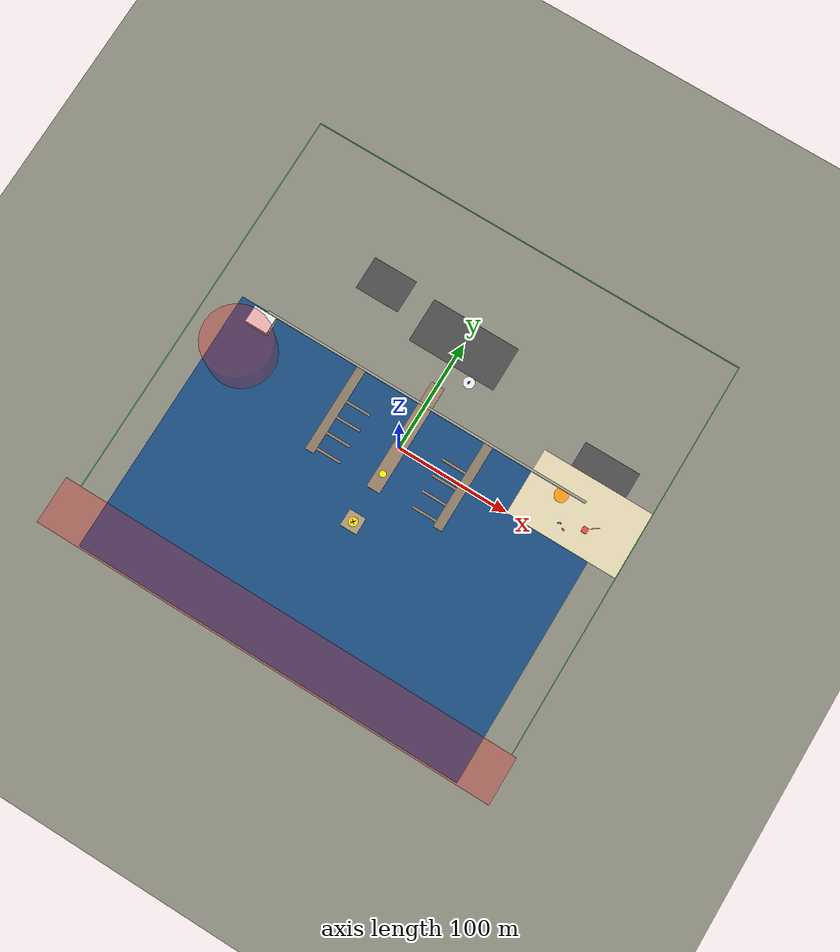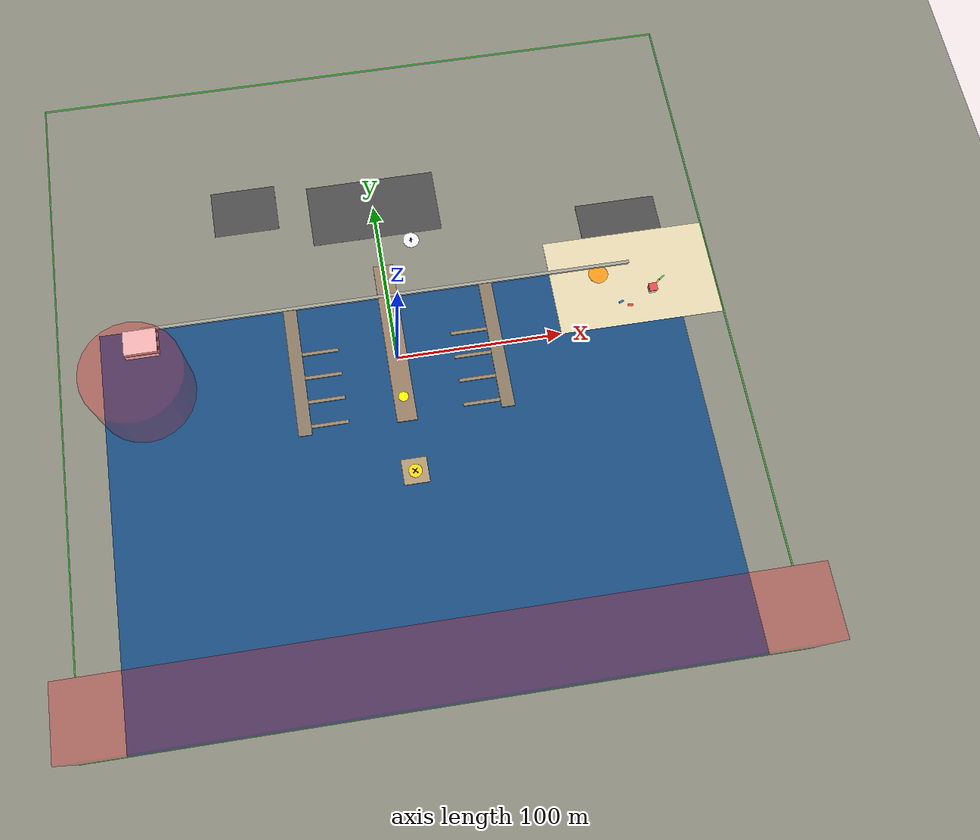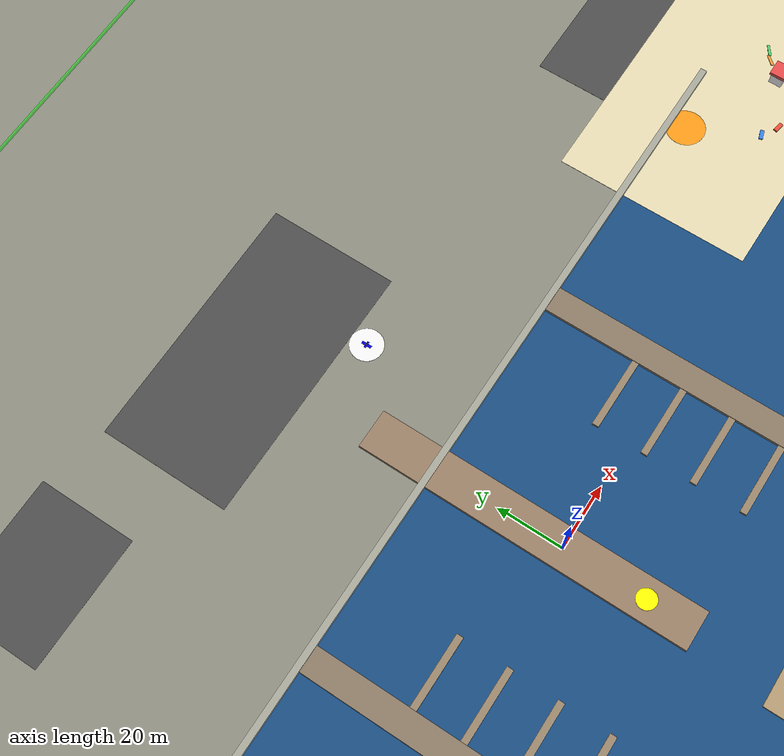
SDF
<sdf version="1.9">
 <world name="flyby_harbor_marina">
  <physics name="training_physics" type="ode">
   <max_step_size>0.001</max_step_size>
   <real_time_factor>1.0</real_time_factor>
   <real_time_update_rate>1000</real_time_update_rate>
   <ode>
    <solver><type>quick</type><iters>50</iters><sor>1.3</sor></solver>
    <constraints><cfm>0.0</cfm><erp>0.2</erp></constraints>
   </ode>
  </physics>
  <plugin filename="gz-sim-physics-system" name="gz::sim::systems::Physics"/>
  <plugin filename="gz-sim-sensors-system" name="gz::sim::systems::Sensors">
   <render_engine>ogre2</render_engine>
  </plugin>
  <plugin filename="gz-sim-scene-broadcaster-system" name="gz::sim::systems::SceneBroadcaster"/>
  <plugin filename="gz-sim-user-commands-system" name="gz::sim::systems::UserCommands"/>
  <plugin filename="gz-sim-imu-system" name="gz::sim::systems::Imu"/>
  <plugin filename="gz-sim-air-pressure-system" name="gz::sim::systems::AirPressure"/>
  <plugin filename="gz-sim-magnetometer-system" name="gz::sim::systems::Magnetometer"/>
  <plugin filename="gz-sim-navsat-system" name="gz::sim::systems::NavSat"/>
  <atmosphere type="adiabatic"><temperature>291.15</temperature><pressure>101325</pressure></atmosphere>
  <spherical_coordinates>
   <surface_model>EARTH_WGS84</surface_model>
   <world_frame_orientation>ENU</world_frame_orientation>
   <latitude_deg>32.7157</latitude_deg>
   <longitude_deg>-117.1611</longitude_deg>
   <elevation>0</elevation>
   <heading_deg>0</heading_deg>
  </spherical_coordinates>
  <light type="directional" name="sun">
   <pose>0 0 150 0 0 0</pose>
   <diffuse>0.9 0.9 0.85 1</diffuse>
   <specular>0.4 0.4 0.35 1</specular>
   <attenuation>
    <range>1000</range>
    <constant>0.9</constant>
    <linear>0.01</linear>
    <quadratic>0.001</quadratic>
   </attenuation>
   <direction>-0.2 0.5 -0.85</direction>
  </light>
  <light type="directional" name="ambient_fill">
   <cast_shadows>false</cast_shadows>
   <pose>0 0 150 0 0 0</pose>
   <diffuse>0.22 0.25 0.3 1</diffuse>
   <specular>0 0 0 1</specular>
   <direction>0 0 -1</direction>
  </light>
  <scene>
   <ambient>0.4 0.42 0.45 1</ambient>
   <background>0.6 0.75 0.9 1</background>
   <shadows>true</shadows>
  </scene>
  <model name="harbor_basin">
   <static>true</static>
   <pose>0 -80 -0.5 0 0 0</pose>
   <link name="link">
    <collision name="collision"><geometry><box><size>350 240 1</size></box></geometry></collision>
    <visual name="visual">
     <geometry><box><size>350 240 1</size></box></geometry>
     <material>
      <ambient>0.08 0.25 0.4 0.95</ambient>
      <diffuse>0.1 0.3 0.5 0.95</diffuse>
      <specular>0.6 0.6 0.6 1</specular>
     </material>
    </visual>
   </link>
  </model>
  <model name="waterfront_land">
   <static>true</static>
   <pose>0 120 0 0 0 0</pose>
   <link name="link">
    <collision name="collision">
     <geometry><plane><normal>0 0 1</normal><size>400 160</size></plane></geometry>
     <surface><friction><ode><mu>60</mu><mu2>30</mu2></ode></friction></surface>
    </collision>
    <visual name="visual">
     <geometry><plane><normal>0 0 1</normal><size>400 160</size></plane></geometry>
     <material><ambient>0.5 0.5 0.45 1</ambient><diffuse>0.55 0.55 0.5 1</diffuse></material>
    </visual>
   </link>
  </model>
  <model name="beach_area">
   <static>true</static>
   <pose>150 30 0 0 0 0</pose>
   <link name="link">
    <collision name="collision"><geometry><box><size>100 60 0.1</size></box></geometry></collision>
    <visual name="visual">
     <geometry><box><size>100 60 0.1</size></box></geometry>
     <material><ambient>0.85 0.8 0.65 1</ambient><diffuse>0.9 0.85 0.7 1</diffuse></material>
    </visual>
   </link>
  </model>
  <model name="seawall">
   <static>true</static>
   <pose>0 40 0.5 0 0 0</pose>
   <link name="link">
    <collision name="collision"><geometry><box><size>300 2 2</size></box></geometry></collision>
    <visual name="visual">
     <geometry><box><size>300 2 2</size></box></geometry>
     <material><ambient>0.6 0.6 0.55 1</ambient><diffuse>0.65 0.65 0.6 1</diffuse></material>
    </visual>
   </link>
  </model>
  <model name="geofence_north">
   <static>true</static>
   <pose>0 200 0.5 0 0 0</pose>
   <link name="link">
    <visual name="visual">
     <geometry><box><size>400 0.5 1</size></box></geometry>
     <material><ambient>0 1 0 0.5</ambient><diffuse>0 1 0 0.5</diffuse></material>
    </visual>
   </link>
  </model>
  <model name="geofence_south">
   <static>true</static>
   <pose>0 -200 0.5 0 0 0</pose>
   <link name="link">
    <visual name="visual">
     <geometry><box><size>400 0.5 1</size></box></geometry>
     <material><ambient>0 1 0 0.5</ambient><diffuse>0 1 0 0.5</diffuse></material>
    </visual>
   </link>
  </model>
  <model name="geofence_east">
   <static>true</static>
   <pose>200 0 0.5 0 0 0</pose>
   <link name="link">
    <visual name="visual">
     <geometry><box><size>0.5 400 1</size></box></geometry>
     <material><ambient>0 1 0 0.5</ambient><diffuse>0 1 0 0.5</diffuse></material>
    </visual>
   </link>
  </model>
  <model name="geofence_west">
   <static>true</static>
   <pose>-200 0 0.5 0 0 0</pose>
   <link name="link">
    <visual name="visual">
     <geometry><box><size>0.5 400 1</size></box></geometry>
     <material><ambient>0 1 0 0.5</ambient><diffuse>0 1 0 0.5</diffuse></material>
    </visual>
   </link>
  </model>
  <model name="main_pier">
   <static>true</static>
   <pose>0 10 0.6 0 0 0</pose>
   <link name="link">
    <collision name="collision"><geometry><box><size>12 100 1.2</size></box></geometry></collision>
    <visual name="visual">
     <geometry><box><size>12 100 1.2</size></box></geometry>
     <material><ambient>0.5 0.4 0.3 1</ambient><diffuse>0.6 0.5 0.4 1</diffuse></material>
    </visual>
   </link>
  </model>
  <model name="main_pier_support_1">
   <static>true</static>
   <pose>-4 -10 -0.2 0 0 0</pose>
   <link name="link">
    <visual name="visual">
     <geometry><cylinder><radius>0.4</radius><length>1.8</length></cylinder></geometry>
     <material><ambient>0.3 0.25 0.2 1</ambient><diffuse>0.4 0.35 0.3 1</diffuse></material>
    </visual>
   </link>
  </model>
  <model name="main_pier_support_2">
   <static>true</static>
   <pose>4 -10 -0.2 0 0 0</pose>
   <link name="link">
    <visual name="visual">
     <geometry><cylinder><radius>0.4</radius><length>1.8</length></cylinder></geometry>
     <material><ambient>0.3 0.25 0.2 1</ambient><diffuse>0.4 0.35 0.3 1</diffuse></material>
    </visual>
   </link>
  </model>
  <model name="main_pier_support_3">
   <static>true</static>
   <pose>-4 -30 -0.2 0 0 0</pose>
   <link name="link">
    <visual name="visual">
     <geometry><cylinder><radius>0.4</radius><length>1.8</length></cylinder></geometry>
     <material><ambient>0.3 0.25 0.2 1</ambient><diffuse>0.4 0.35 0.3 1</diffuse></material>
    </visual>
   </link>
  </model>
  <model name="main_pier_support_4">
   <static>true</static>
   <pose>4 -30 -0.2 0 0 0</pose>
   <link name="link">
    <visual name="visual">
     <geometry><cylinder><radius>0.4</radius><length>1.8</length></cylinder></geometry>
     <material><ambient>0.3 0.25 0.2 1</ambient><diffuse>0.4 0.35 0.3 1</diffuse></material>
    </visual>
   </link>
  </model>
  <model name="dock_a">
   <static>true</static>
   <pose>-60 0 0.5 0 0 0</pose>
   <link name="link">
    <collision name="collision"><geometry><box><size>8 80 1</size></box></geometry></collision>
    <visual name="visual">
     <geometry><box><size>8 80 1</size></box></geometry>
     <material><ambient>0.45 0.38 0.3 1</ambient><diffuse>0.55 0.48 0.4 1</diffuse></material>
    </visual>
   </link>
  </model>
  <model name="dock_a_finger_1">
   <static>true</static>
   <pose>-45 10 0.4 0 0 0</pose>
   <link name="link">
    <collision name="collision"><geometry><box><size>22 2 0.8</size></box></geometry></collision>
    <visual name="visual">
     <geometry><box><size>22 2 0.8</size></box></geometry>
     <material><ambient>0.5 0.42 0.32 1</ambient><diffuse>0.6 0.52 0.42 1</diffuse></material>
    </visual>
   </link>
  </model>
  <model name="dock_a_finger_2">
   <static>true</static>
   <pose>-45 -5 0.4 0 0 0</pose>
   <link name="link">
    <collision name="collision"><geometry><box><size>22 2 0.8</size></box></geometry></collision>
    <visual name="visual">
     <geometry><box><size>22 2 0.8</size></box></geometry>
     <material><ambient>0.5 0.42 0.32 1</ambient><diffuse>0.6 0.52 0.42 1</diffuse></material>
    </visual>
   </link>
  </model>
  <model name="dock_a_finger_3">
   <static>true</static>
   <pose>-45 -20 0.4 0 0 0</pose>
   <link name="link">
    <collision name="collision"><geometry><box><size>22 2 0.8</size></box></geometry></collision>
    <visual name="visual">
     <geometry><box><size>22 2 0.8</size></box></geometry>
     <material><ambient>0.5 0.42 0.32 1</ambient><diffuse>0.6 0.52 0.42 1</diffuse></material>
    </visual>
   </link>
  </model>
  <model name="dock_a_finger_4">
   <static>true</static>
   <pose>-45 -35 0.4 0 0 0</pose>
   <link name="link">
    <collision name="collision"><geometry><box><size>22 2 0.8</size></box></geometry></collision>
    <visual name="visual">
     <geometry><box><size>22 2 0.8</size></box></geometry>
     <material><ambient>0.5 0.42 0.32 1</ambient><diffuse>0.6 0.52 0.42 1</diffuse></material>
    </visual>
   </link>
  </model>
  <model name="dock_b">
   <static>true</static>
   <pose>60 0 0.5 0 0 0</pose>
   <link name="link">
    <collision name="collision"><geometry><box><size>8 80 1</size></box></geometry></collision>
    <visual name="visual">
     <geometry><box><size>8 80 1</size></box></geometry>
     <material><ambient>0.45 0.38 0.3 1</ambient><diffuse>0.55 0.48 0.4 1</diffuse></material>
    </visual>
   </link>
  </model>
  <model name="dock_b_finger_1">
   <static>true</static>
   <pose>45 10 0.4 0 0 0</pose>
   <link name="link">
    <collision name="collision"><geometry><box><size>22 2 0.8</size></box></geometry></collision>
    <visual name="visual">
     <geometry><box><size>22 2 0.8</size></box></geometry>
     <material><ambient>0.5 0.42 0.32 1</ambient><diffuse>0.6 0.52 0.42 1</diffuse></material>
    </visual>
   </link>
  </model>
  <model name="dock_b_finger_2">
   <static>true</static>
   <pose>45 -5 0.4 0 0 0</pose>
   <link name="link">
    <collision name="collision"><geometry><box><size>22 2 0.8</size></box></geometry></collision>
    <visual name="visual">
     <geometry><box><size>22 2 0.8</size></box></geometry>
     <material><ambient>0.5 0.42 0.32 1</ambient><diffuse>0.6 0.52 0.42 1</diffuse></material>
    </visual>
   </link>
  </model>
  <model name="dock_b_finger_3">
   <static>true</static>
   <pose>45 -20 0.4 0 0 0</pose>
   <link name="link">
    <collision name="collision"><geometry><box><size>22 2 0.8</size></box></geometry></collision>
    <visual name="visual">
     <geometry><box><size>22 2 0.8</size></box></geometry>
     <material><ambient>0.5 0.42 0.32 1</ambient><diffuse>0.6 0.52 0.42 1</diffuse></material>
    </visual>
   </link>
  </model>
  <model name="dock_b_finger_4">
   <static>true</static>
   <pose>45 -35 0.4 0 0 0</pose>
   <link name="link">
    <collision name="collision"><geometry><box><size>22 2 0.8</size></box></geometry></collision>
    <visual name="visual">
     <geometry><box><size>22 2 0.8</size></box></geometry>
     <material><ambient>0.5 0.42 0.32 1</ambient><diffuse>0.6 0.52 0.42 1</diffuse></material>
    </visual>
   </link>
  </model>
  <model name="floating_dock">
   <static>true</static>
   <pose>0 -70 0.3 0 0 0</pose>
   <link name="link">
    <collision name="collision"><geometry><box><size>15 15 0.6</size></box></geometry></collision>
    <visual name="visual">
     <geometry><box><size>15 15 0.6</size></box></geometry>
     <material><ambient>0.6 0.5 0.35 1</ambient><diffuse>0.7 0.6 0.45 1</diffuse></material>
    </visual>
   </link>
  </model>
  <model name="harbor_master_collision">
   <static>true</static>
   <pose>0 60 5 0 0 0</pose>
   <link name="link">
    <collision name="collision"><geometry><box><size>20 15 10</size></box></geometry></collision>
   </link>
  </model>
  <model name="seafood_restaurant_collision">
   <static>true</static>
   <pose>-80 70 4 0 0 0.1</pose>
   <link name="link">
    <collision name="collision"><geometry><box><size>18 14 8</size></box></geometry></collision>
   </link>
  </model>
  <model name="boat_repair_shop_collision">
   <static>true</static>
   <pose>80 65 5 0 0 -0.1</pose>
   <link name="link">
    <collision name="collision"><geometry><box><size>22 16 10</size></box></geometry></collision>
   </link>
  </model>
  <model name="bait_shop_collision">
   <static>true</static>
   <pose>-40 55 3 0 0 0</pose>
   <link name="link">
    <collision name="collision"><geometry><box><size>10 8 6</size></box></geometry></collision>
   </link>
  </model>
  <model name="marina_office_collision">
   <static>true</static>
   <pose>40 55 3 0 0 0</pose>
   <link name="link">
    <collision name="collision"><geometry><box><size>12 10 6</size></box></geometry></collision>
   </link>
  </model>
  <model name="lifeguard_tower">
   <static>true</static>
   <pose>160 20 0 0 0 0</pose>
   <link name="link">
    <collision name="collision"><geometry><box><size>4 4 5</size></box></geometry></collision>
    <visual name="base">
     <pose>0 0 2 0 0 0</pose>
     <geometry><box><size>4 4 4</size></box></geometry>
     <material><ambient>0.9 0.9 0.9 1</ambient><diffuse>0.95 0.95 0.95 1</diffuse></material>
    </visual>
    <visual name="roof">
     <pose>0 0 4.5 0 0 0</pose>
     <geometry><box><size>5 5 1</size></box></geometry>
     <material><ambient>0.8 0.2 0.2 1</ambient><diffuse>0.9 0.3 0.3 1</diffuse></material>
    </visual>
   </link>
  </model>
  <model name="parking_lot_main">
   <static>true</static>
   <pose>0 100 0.02 0 0 0</pose>
   <link name="link">
    <collision name="collision"><geometry><box><size>80 40 0.04</size></box></geometry></collision>
    <visual name="visual">
     <geometry><box><size>80 40 0.04</size></box></geometry>
     <material><ambient>0.25 0.25 0.25 1</ambient><diffuse>0.3 0.3 0.3 1</diffuse></material>
    </visual>
   </link>
  </model>
  <model name="parking_stripes_1">
   <static>true</static>
   <pose>-30 100 0.03 0 0 0</pose>
   <link name="link">
    <visual name="visual">
     <geometry><box><size>0.15 30 0.01</size></box></geometry>
     <material><ambient>1 1 1 1</ambient><diffuse>1 1 1 1</diffuse></material>
    </visual>
   </link>
  </model>
  <model name="parking_stripes_2">
   <static>true</static>
   <pose>-20 100 0.03 0 0 0</pose>
   <link name="link">
    <visual name="visual">
     <geometry><box><size>0.15 30 0.01</size></box></geometry>
     <material><ambient>1 1 1 1</ambient><diffuse>1 1 1 1</diffuse></material>
    </visual>
   </link>
  </model>
  <model name="parking_stripes_3">
   <static>true</static>
   <pose>-10 100 0.03 0 0 0</pose>
   <link name="link">
    <visual name="visual">
     <geometry><box><size>0.15 30 0.01</size></box></geometry>
     <material><ambient>1 1 1 1</ambient><diffuse>1 1 1 1</diffuse></material>
    </visual>
   </link>
  </model>
  <model name="parking_stripes_4">
   <static>true</static>
   <pose>0 100 0.03 0 0 0</pose>
   <link name="link">
    <visual name="visual">
     <geometry><box><size>0.15 30 0.01</size></box></geometry>
     <material><ambient>1 1 1 1</ambient><diffuse>1 1 1 1</diffuse></material>
    </visual>
   </link>
  </model>
  <model name="parking_stripes_5">
   <static>true</static>
   <pose>10 100 0.03 0 0 0</pose>
   <link name="link">
    <visual name="visual">
     <geometry><box><size>0.15 30 0.01</size></box></geometry>
     <material><ambient>1 1 1 1</ambient><diffuse>1 1 1 1</diffuse></material>
    </visual>
   </link>
  </model>
  <model name="parking_stripes_6">
   <static>true</static>
   <pose>20 100 0.03 0 0 0</pose>
   <link name="link">
    <visual name="visual">
     <geometry><box><size>0.15 30 0.01</size></box></geometry>
     <material><ambient>1 1 1 1</ambient><diffuse>1 1 1 1</diffuse></material>
    </visual>
   </link>
  </model>
  <model name="parking_stripes_7">
   <static>true</static>
   <pose>30 100 0.03 0 0 0</pose>
   <link name="link">
    <visual name="visual">
     <geometry><box><size>0.15 30 0.01</size></box></geometry>
     <material><ambient>1 1 1 1</ambient><diffuse>1 1 1 1</diffuse></material>
    </visual>
   </link>
  </model>
  <model name="parking_lot_restaurant">
   <static>true</static>
   <pose>-80 110 0.02 0 0 0</pose>
   <link name="link">
    <collision name="collision"><geometry><box><size>40 30 0.04</size></box></geometry></collision>
    <visual name="visual">
     <geometry><box><size>40 30 0.04</size></box></geometry>
     <material><ambient>0.25 0.25 0.25 1</ambient><diffuse>0.3 0.3 0.3 1</diffuse></material>
    </visual>
   </link>
  </model>
  <model name="parking_lot_beach">
   <static>true</static>
   <pose>150 70 0.02 0 0 0</pose>
   <link name="link">
    <collision name="collision"><geometry><box><size>50 25 0.04</size></box></geometry></collision>
    <visual name="visual">
     <geometry><box><size>50 25 0.04</size></box></geometry>
     <material><ambient>0.25 0.25 0.25 1</ambient><diffuse>0.3 0.3 0.3 1</diffuse></material>
    </visual>
   </link>
  </model>
  <model name="fishing_boat_1_collision">
   <static>true</static>
   <pose>-35 8 1.5 0 0 1.57</pose>
   <link name="link">
    <collision name="collision"><geometry><box><size>10 4 3</size></box></geometry></collision>
   </link>
  </model>
  <model name="fishing_boat_2_collision">
   <static>true</static>
   <pose>-35 -7 1.5 0 0 1.57</pose>
   <link name="link">
    <collision name="collision"><geometry><box><size>10 4 3</size></box></geometry></collision>
   </link>
  </model>
  <model name="fishing_boat_3_collision">
   <static>true</static>
   <pose>-35 -22 1.5 0 0 1.57</pose>
   <link name="link">
    <collision name="collision"><geometry><box><size>10 4 3</size></box></geometry></collision>
   </link>
  </model>
  <model name="speedboat_1_collision">
   <static>true</static>
   <pose>35 8 1 0 0 -1.57</pose>
   <link name="link">
    <collision name="collision"><geometry><box><size>7 2.5 2</size></box></geometry></collision>
   </link>
  </model>
  <model name="speedboat_2_collision">
   <static>true</static>
   <pose>35 -7 1 0 0 -1.57</pose>
   <link name="link">
    <collision name="collision"><geometry><box><size>7 2.5 2</size></box></geometry></collision>
   </link>
  </model>
  <model name="sailboat_1_collision">
   <static>true</static>
   <pose>35 -22 4 0 0 -1.57</pose>
   <link name="link">
    <collision name="collision"><geometry><box><size>12 4 8</size></box></geometry></collision>
   </link>
  </model>
  <model name="yacht_1_collision">
   <static>true</static>
   <pose>15 -15 3 0 0 0</pose>
   <link name="link">
    <collision name="collision"><geometry><box><size>18 6 6</size></box></geometry></collision>
   </link>
  </model>
  <model name="boat_underway_collision">
   <static>true</static>
   <pose>-100 -100 1.5 0 0 0.4</pose>
   <link name="link">
    <collision name="collision"><geometry><box><size>10 4 3</size></box></geometry></collision>
   </link>
  </model>
  <model name="jetski_1">
   <static>true</static>
   <pose>140 15 0.2 0 0 0.3</pose>
   <link name="link">
    <collision name="collision"><geometry><box><size>3 1.2 1</size></box></geometry></collision>
    <visual name="visual">
     <geometry><box><size>3 1.2 0.8</size></box></geometry>
     <material><ambient>0.1 0.4 0.8 1</ambient><diffuse>0.2 0.5 0.9 1</diffuse></material>
    </visual>
   </link>
  </model>
  <model name="jetski_2">
   <static>true</static>
   <pose>145 12 0.2 0 0 -0.2</pose>
   <link name="link">
    <collision name="collision"><geometry><box><size>3 1.2 1</size></box></geometry></collision>
    <visual name="visual">
     <geometry><box><size>3 1.2 0.8</size></box></geometry>
     <material><ambient>0.8 0.2 0.1 1</ambient><diffuse>0.9 0.3 0.2 1</diffuse></material>
    </visual>
   </link>
  </model>
  <model name="kayak_1">
   <static>true</static>
   <pose>165 25 0.15 0 0.1 0.8</pose>
   <link name="link">
    <collision name="collision"><geometry><box><size>4 0.8 0.4</size></box></geometry></collision>
    <visual name="visual">
     <geometry><box><size>4 0.8 0.3</size></box></geometry>
     <material><ambient>0.9 0.5 0.1 1</ambient><diffuse>1 0.6 0.2 1</diffuse></material>
    </visual>
   </link>
  </model>
  <model name="kayak_2">
   <static>true</static>
   <pose>168 27 0.15 0 0.1 0.6</pose>
   <link name="link">
    <collision name="collision"><geometry><box><size>4 0.8 0.4</size></box></geometry></collision>
    <visual name="visual">
     <geometry><box><size>4 0.8 0.3</size></box></geometry>
     <material><ambient>0.2 0.7 0.3 1</ambient><diffuse>0.3 0.8 0.4 1</diffuse></material>
    </visual>
   </link>
  </model>
  <model name="nfz_shipping_lane">
   <static>true</static>
   <pose>0 -180 25 0 0 0</pose>
   <link name="link">
    <visual name="visual">
     <geometry><box><size>400 40 50</size></box></geometry>
     <material><ambient>1 0 0 0.25</ambient><diffuse>1 0 0 0.25</diffuse></material>
    </visual>
   </link>
  </model>
  <model name="nfz_coast_guard">
   <static>true</static>
   <pose>-150 0 20 0 0 0</pose>
   <link name="link">
    <visual name="visual">
     <geometry><cylinder><radius>30</radius><length>40</length></cylinder></geometry>
     <material><ambient>1 0 0 0.25</ambient><diffuse>1 0 0 0.25</diffuse></material>
    </visual>
   </link>
  </model>
  <model name="coast_guard_station">
   <static>true</static>
   <pose>-150 30 0 0 0 0</pose>
   <link name="link">
    <collision name="collision"><geometry><box><size>20 15 8</size></box></geometry></collision>
    <visual name="visual">
     <pose>0 0 4 0 0 0</pose>
     <geometry><box><size>20 15 8</size></box></geometry>
     <material><ambient>0.9 0.9 0.9 1</ambient><diffuse>0.95 0.95 0.95 1</diffuse></material>
    </visual>
    <visual name="stripe">
     <pose>0 0 5 0 0 0</pose>
     <geometry><box><size>20.1 15.1 1</size></box></geometry>
     <material><ambient>0.8 0.3 0.1 1</ambient><diffuse>0.9 0.4 0.2 1</diffuse></material>
    </visual>
   </link>
  </model>
  <model name="landing_zone_primary">
   <static>true</static>
   <pose>20 75 0.03 0 0 0</pose>
   <link name="link">
    <visual name="pad">
     <geometry><cylinder><radius>5</radius><length>0.04</length></cylinder></geometry>
     <material><ambient>0.9 0.9 0.9 1</ambient><diffuse>0.95 0.95 0.95 1</diffuse></material>
    </visual>
    <visual name="H_vertical">
     <pose>0 0 0.03 0 0 0</pose>
     <geometry><box><size>0.8 3 0.02</size></box></geometry>
     <material><ambient>0 0 0.8 1</ambient><diffuse>0 0 0.9 1</diffuse></material>
    </visual>
    <visual name="H_horizontal">
     <pose>0 0 0.03 0 0 0</pose>
     <geometry><box><size>2 0.6 0.02</size></box></geometry>
     <material><ambient>0 0 0.8 1</ambient><diffuse>0 0 0.9 1</diffuse></material>
    </visual>
   </link>
  </model>
  <model name="landing_zone_pier">
   <static>true</static>
   <pose>0 -25 1.21 0 0 0</pose>
   <link name="link">
    <visual name="pad">
     <geometry><cylinder><radius>3</radius><length>0.02</length></cylinder></geometry>
     <material><ambient>1 1 0 1</ambient><diffuse>1 1 0 1</diffuse></material>
    </visual>
   </link>
  </model>
  <model name="landing_zone_floating">
   <static>true</static>
   <pose>0 -70 0.61 0 0 0</pose>
   <link name="link">
    <visual name="pad">
     <geometry><cylinder><radius>4</radius><length>0.02</length></cylinder></geometry>
     <material><ambient>1 0.8 0 1</ambient><diffuse>1 0.85 0.1 1</diffuse></material>
    </visual>
    <visual name="X_1">
     <pose>0 0 0.02 0 0 0.785</pose>
     <geometry><box><size>0.5 4 0.02</size></box></geometry>
     <material><ambient>0 0 0 1</ambient><diffuse>0.1 0.1 0.1 1</diffuse></material>
    </visual>
    <visual name="X_2">
     <pose>0 0 0.02 0 0 -0.785</pose>
     <geometry><box><size>0.5 4 0.02</size></box></geometry>
     <material><ambient>0 0 0 1</ambient><diffuse>0.1 0.1 0.1 1</diffuse></material>
    </visual>
   </link>
  </model>
  <model name="landing_zone_beach">
   <static>true</static>
   <pose>130 35 0.12 0 0 0</pose>
   <link name="link">
    <visual name="pad">
     <geometry><cylinder><radius>6</radius><length>0.02</length></cylinder></geometry>
     <material><ambient>1 0.5 0 1</ambient><diffuse>1 0.6 0.1 1</diffuse></material>
    </visual>
   </link>
  </model>
  <include>
   <uri>model://f11_isr_camera</uri>
   <name>f11_isr</name>
   <pose>20 75 0.5 0 0 0</pose>
   <plugin filename="gz-sim-joint-position-controller-system" name="gz::sim::systems::JointPositionController">
    <joint_name>gimbal_yaw_joint</joint_name>
    <topic>/f11_isr/gimbal/yaw</topic>
    <p_gain>10.0</p_gain>
    <i_gain>0.1</i_gain>
    <d_gain>0.5</d_gain>
    <i_max>1.0</i_max>
    <i_min>-1.0</i_min>
    <cmd_max>10.0</cmd_max>
    <cmd_min>-10.0</cmd_min>
   </plugin>
   <plugin filename="gz-sim-joint-position-controller-system" name="gz::sim::systems::JointPositionController">
    <joint_name>gimbal_pitch_joint</joint_name>
    <topic>/f11_isr/gimbal/pitch</topic>
    <p_gain>10.0</p_gain>
    <i_gain>0.1</i_gain>
    <d_gain>0.5</d_gain>
    <i_max>1.0</i_max>
    <i_min>-1.0</i_min>
    <cmd_max>10.0</cmd_max>
    <cmd_min>-10.0</cmd_min>
   </plugin>
   <plugin filename="gz-sim-joint-position-controller-system" name="gz::sim::systems::JointPositionController">
    <joint_name>camera_joint</joint_name>
    <topic>/f11_isr/gimbal/roll</topic>
    <p_gain>10.0</p_gain>
    <i_gain>0.1</i_gain>
    <d_gain>0.5</d_gain>
    <i_max>1.0</i_max>
    <i_min>-1.0</i_min>
    <cmd_max>10.0</cmd_max>
    <cmd_min>-10.0</cmd_min>
   </plugin>
  </include>
 </world>
</sdf>

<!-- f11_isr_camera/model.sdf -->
<sdf version="1.9">
  <model name="f11_isr_camera">
    <pose>0 0 0.25 0 0 0</pose>

    <!-- F-11 Base Link (Main Body) -->
    <link name="base_link">
      <inertial>
        <!-- Total mass: 4.5 kg base + 1.8 kg payload = 6.3 kg -->
        <mass>6.3</mass>
        <!-- CoG shifted down due to bottom-mounted payload -->
        <pose>0 0 -0.05 0 0 0</pose>
        <inertia>
          <!-- Adjusted inertia for heavier payload -->
          <ixx>0.115</ixx>
          <ixy>0</ixy>
          <ixz>0</ixz>
          <iyy>0.115</iyy>
          <iyz>0</iyz>
          <izz>0.175</izz>
        </inertia>
      </inertial>

      <!-- Main body visual - central frame -->
      <visual name="body_visual">
        <geometry>
          <box>
            <size>0.30 0.30 0.12</size>
          </box>
        </geometry>
        <material>
          <ambient>0.1 0.1 0.1 1</ambient>
          <diffuse>0.15 0.15 0.15 1</diffuse>
          <specular>0.3 0.3 0.3 1</specular>
        </material>
      </visual>

      <!-- Battery bay visual -->
      <visual name="battery_visual">
        <pose>0 0 -0.04 0 0 0</pose>
        <geometry>
          <box>
            <size>0.18 0.12 0.06</size>
          </box>
        </geometry>
        <material>
          <ambient>0.2 0.2 0.25 1</ambient>
          <diffuse>0.25 0.25 0.3 1</diffuse>
        </material>
      </visual>

      <!-- Jetson Orin NX housing visual -->
      <visual name="compute_visual">
        <pose>0 0 0.08 0 0 0</pose>
        <geometry>
          <box>
            <size>0.10 0.08 0.04</size>
          </box>
        </geometry>
        <material>
          <ambient>0.0 0.4 0.0 1</ambient>
          <diffuse>0.0 0.5 0.0 1</diffuse>
        </material>
      </visual>

      <!-- Front marker for orientation (green) -->
      <visual name="front_marker">
        <pose>0.12 0 0.06 0 0 0</pose>
        <geometry>
          <sphere>
            <radius>0.03</radius>
          </sphere>
        </geometry>
        <material>
          <ambient>0 1 0 1</ambient>
          <diffuse>0 1 0 1</diffuse>
        </material>
      </visual>

      <!-- Arms visual representation -->
      <visual name="arm_fr_visual">
        <pose>0.1375 -0.1375 0 0 0 -0.785398</pose>
        <geometry>
          <box>
            <size>0.25 0.04 0.03</size>
          </box>
        </geometry>
        <material>
          <ambient>0.15 0.15 0.15 1</ambient>
          <diffuse>0.2 0.2 0.2 1</diffuse>
        </material>
      </visual>

      <visual name="arm_fl_visual">
        <pose>0.1375 0.1375 0 0 0 0.785398</pose>
        <geometry>
          <box>
            <size>0.25 0.04 0.03</size>
          </box>
        </geometry>
        <material>
          <ambient>0.15 0.15 0.15 1</ambient>
          <diffuse>0.2 0.2 0.2 1</diffuse>
        </material>
      </visual>

      <visual name="arm_br_visual">
        <pose>-0.1375 -0.1375 0 0 0 0.785398</pose>
        <geometry>
          <box>
            <size>0.25 0.04 0.03</size>
          </box>
        </geometry>
        <material>
          <ambient>0.15 0.15 0.15 1</ambient>
          <diffuse>0.2 0.2 0.2 1</diffuse>
        </material>
      </visual>

      <visual name="arm_bl_visual">
        <pose>-0.1375 0.1375 0 0 0 -0.785398</pose>
        <geometry>
          <box>
            <size>0.25 0.04 0.03</size>
          </box>
        </geometry>
        <material>
          <ambient>0.15 0.15 0.15 1</ambient>
          <diffuse>0.2 0.2 0.2 1</diffuse>
        </material>
      </visual>

      <collision name="body_collision">
        <geometry>
          <box>
            <size>0.55 0.55 0.15</size>
          </box>
        </geometry>
      </collision>
    </link>

    <!-- Rotor 0 (Front Right - CW) -->
    <link name="rotor_0">
      <pose>0.195 -0.195 0.04 0 0 0</pose>
      <inertial>
        <mass>0.025</mass>
        <inertia>
          <ixx>1.0e-05</ixx>
          <ixy>0</ixy>
          <ixz>0</ixz>
          <iyy>5.0e-04</iyy>
          <iyz>0</iyz>
          <izz>5.0e-04</izz>
        </inertia>
      </inertial>
      <visual name="rotor_visual">
        <geometry>
          <cylinder>
            <radius>0.19</radius>
            <length>0.01</length>
          </cylinder>
        </geometry>
        <material>
          <ambient>0.8 0.2 0.2 0.8</ambient>
          <diffuse>0.9 0.3 0.3 0.8</diffuse>
        </material>
      </visual>
      <visual name="motor_visual">
        <pose>0 0 -0.015 0 0 0</pose>
        <geometry>
          <cylinder>
            <radius>0.025</radius>
            <length>0.04</length>
          </cylinder>
        </geometry>
        <material>
          <ambient>0.3 0.3 0.3 1</ambient>
          <diffuse>0.4 0.4 0.4 1</diffuse>
        </material>
      </visual>
    </link>

    <!-- Rotor 1 (Back Left - CW) -->
    <link name="rotor_1">
      <pose>-0.195 0.195 0.04 0 0 0</pose>
      <inertial>
        <mass>0.025</mass>
        <inertia>
          <ixx>1.0e-05</ixx>
          <ixy>0</ixy>
          <ixz>0</ixz>
          <iyy>5.0e-04</iyy>
          <iyz>0</iyz>
          <izz>5.0e-04</izz>
        </inertia>
      </inertial>
      <visual name="rotor_visual">
        <geometry>
          <cylinder>
            <radius>0.19</radius>
            <length>0.01</length>
          </cylinder>
        </geometry>
        <material>
          <ambient>0.8 0.2 0.2 0.8</ambient>
          <diffuse>0.9 0.3 0.3 0.8</diffuse>
        </material>
      </visual>
      <visual name="motor_visual">
        <pose>0 0 -0.015 0 0 0</pose>
        <geometry>
          <cylinder>
            <radius>0.025</radius>
            <length>0.04</length>
          </cylinder>
        </geometry>
        <material>
          <ambient>0.3 0.3 0.3 1</ambient>
          <diffuse>0.4 0.4 0.4 1</diffuse>
        </material>
      </visual>
    </link>

    <!-- Rotor 2 (Front Left - CCW) -->
    <link name="rotor_2">
      <pose>0.195 0.195 0.04 0 0 0</pose>
      <inertial>
        <mass>0.025</mass>
        <inertia>
          <ixx>1.0e-05</ixx>
          <ixy>0</ixy>
          <ixz>0</ixz>
          <iyy>5.0e-04</iyy>
          <iyz>0</iyz>
          <izz>5.0e-04</izz>
        </inertia>
      </inertial>
      <visual name="rotor_visual">
        <geometry>
          <cylinder>
            <radius>0.19</radius>
            <length>0.01</length>
          </cylinder>
        </geometry>
        <material>
          <ambient>0.2 0.2 0.8 0.8</ambient>
          <diffuse>0.3 0.3 0.9 0.8</diffuse>
        </material>
      </visual>
      <visual name="motor_visual">
        <pose>0 0 -0.015 0 0 0</pose>
        <geometry>
          <cylinder>
            <radius>0.025</radius>
            <length>0.04</length>
          </cylinder>
        </geometry>
        <material>
          <ambient>0.3 0.3 0.3 1</ambient>
          <diffuse>0.4 0.4 0.4 1</diffuse>
        </material>
      </visual>
    </link>

    <!-- Rotor 3 (Back Right - CCW) -->
    <link name="rotor_3">
      <pose>-0.195 -0.195 0.04 0 0 0</pose>
      <inertial>
        <mass>0.025</mass>
        <inertia>
          <ixx>1.0e-05</ixx>
          <ixy>0</ixy>
          <ixz>0</ixz>
          <iyy>5.0e-04</iyy>
          <iyz>0</iyz>
          <izz>5.0e-04</izz>
        </inertia>
      </inertial>
      <visual name="rotor_visual">
        <geometry>
          <cylinder>
            <radius>0.19</radius>
            <length>0.01</length>
          </cylinder>
        </geometry>
        <material>
          <ambient>0.2 0.2 0.8 0.8</ambient>
          <diffuse>0.3 0.3 0.9 0.8</diffuse>
        </material>
      </visual>
      <visual name="motor_visual">
        <pose>0 0 -0.015 0 0 0</pose>
        <geometry>
          <cylinder>
            <radius>0.025</radius>
            <length>0.04</length>
          </cylinder>
        </geometry>
        <material>
          <ambient>0.3 0.3 0.3 1</ambient>
          <diffuse>0.4 0.4 0.4 1</diffuse>
        </material>
      </visual>
    </link>

    <!-- Gimbal Mount Link -->
    <link name="gimbal_mount_link">
      <pose>0 0 -0.10 0 0 0</pose>
      <inertial>
        <mass>0.2</mass>
        <inertia>
          <ixx>0.0005</ixx>
          <ixy>0</ixy>
          <ixz>0</ixz>
          <iyy>0.0005</iyy>
          <iyz>0</iyz>
          <izz>0.0003</izz>
        </inertia>
      </inertial>
      <visual name="mount_visual">
        <geometry>
          <box>
            <size>0.08 0.08 0.03</size>
          </box>
        </geometry>
        <material>
          <ambient>0.3 0.3 0.3 1</ambient>
          <diffuse>0.4 0.4 0.4 1</diffuse>
        </material>
      </visual>
    </link>

    <!-- Gimbal Yaw Link -->
    <link name="gimbal_yaw_link">
      <pose>0 0 -0.13 0 0 0</pose>
      <inertial>
        <mass>0.3</mass>
        <inertia>
          <ixx>0.0008</ixx>
          <ixy>0</ixy>
          <ixz>0</ixz>
          <iyy>0.0008</iyy>
          <iyz>0</iyz>
          <izz>0.0005</izz>
        </inertia>
      </inertial>
      <visual name="yaw_visual">
        <geometry>
          <cylinder>
            <radius>0.04</radius>
            <length>0.05</length>
          </cylinder>
        </geometry>
        <material>
          <ambient>0.25 0.25 0.25 1</ambient>
          <diffuse>0.35 0.35 0.35 1</diffuse>
        </material>
      </visual>
    </link>

    <!-- Gimbal Pitch Link -->
    <link name="gimbal_pitch_link">
      <pose>0 0 -0.18 0 0 0</pose>
      <inertial>
        <mass>0.25</mass>
        <inertia>
          <ixx>0.0006</ixx>
          <ixy>0</ixy>
          <ixz>0</ixz>
          <iyy>0.0006</iyy>
          <iyz>0</iyz>
          <izz>0.0004</izz>
        </inertia>
      </inertial>
      <visual name="pitch_visual">
        <geometry>
          <box>
            <size>0.06 0.12 0.06</size>
          </box>
        </geometry>
        <material>
          <ambient>0.2 0.2 0.2 1</ambient>
          <diffuse>0.3 0.3 0.3 1</diffuse>
        </material>
      </visual>
    </link>

    <!-- Camera Link (Sony A7R) -->
    <link name="camera_link">
      <pose>0 0 -0.25 0 0.35 0</pose>
      <inertial>
        <mass>0.85</mass>
        <inertia>
          <ixx>0.002</ixx>
          <ixy>0</ixy>
          <ixz>0</ixz>
          <iyy>0.0015</iyy>
          <iyz>0</iyz>
          <izz>0.001</izz>
        </inertia>
      </inertial>
      <!-- Camera body -->
      <visual name="camera_body_visual">
        <geometry>
          <box>
            <size>0.127 0.094 0.048</size>
          </box>
        </geometry>
        <material>
          <ambient>0.1 0.1 0.1 1</ambient>
          <diffuse>0.15 0.15 0.15 1</diffuse>
        </material>
      </visual>
      <!-- Lens -->
      <visual name="lens_visual">
        <pose>0.06 0 0 0 1.5708 0</pose>
        <geometry>
          <cylinder>
            <radius>0.035</radius>
            <length>0.08</length>
          </cylinder>
        </geometry>
        <material>
          <ambient>0.05 0.05 0.05 1</ambient>
          <diffuse>0.1 0.1 0.1 1</diffuse>
        </material>
      </visual>
      <!-- Camera Sensor -->
      <sensor name="isr_camera" type="camera">
        <pose>0.10 0 0 0 0 0</pose>
        <camera>
          <horizontal_fov>1.047</horizontal_fov>
          <image>
            <width>1920</width>
            <height>1080</height>
            <format>R8G8B8</format>
          </image>
          <clip>
            <near>0.1</near>
            <far>1000</far>
          </clip>
          <noise>
            <type>gaussian</type>
            <mean>0</mean>
            <stddev>0.007</stddev>
          </noise>
        </camera>
        <always_on>1</always_on>
        <update_rate>30</update_rate>
        <visualize>true</visualize>
      </sensor>
    </link>

    <!-- Rotor joints -->
    <joint name="rotor_0_joint" type="revolute">
      <parent>base_link</parent>
      <child>rotor_0</child>
      <axis>
        <xyz>0 0 1</xyz>
        <limit>
          <lower>-1e16</lower>
          <upper>1e16</upper>
        </limit>
        <dynamics>
          <damping>0.004</damping>
        </dynamics>
      </axis>
    </joint>

    <joint name="rotor_1_joint" type="revolute">
      <parent>base_link</parent>
      <child>rotor_1</child>
      <axis>
        <xyz>0 0 1</xyz>
        <limit>
          <lower>-1e16</lower>
          <upper>1e16</upper>
        </limit>
        <dynamics>
          <damping>0.004</damping>
        </dynamics>
      </axis>
    </joint>

    <joint name="rotor_2_joint" type="revolute">
      <parent>base_link</parent>
      <child>rotor_2</child>
      <axis>
        <xyz>0 0 1</xyz>
        <limit>
          <lower>-1e16</lower>
          <upper>1e16</upper>
        </limit>
        <dynamics>
          <damping>0.004</damping>
        </dynamics>
      </axis>
    </joint>

    <joint name="rotor_3_joint" type="revolute">
      <parent>base_link</parent>
      <child>rotor_3</child>
      <axis>
        <xyz>0 0 1</xyz>
        <limit>
          <lower>-1e16</lower>
          <upper>1e16</upper>
        </limit>
        <dynamics>
          <damping>0.004</damping>
        </dynamics>
      </axis>
    </joint>

    <!-- Gimbal joints -->
    <joint name="gimbal_mount_joint" type="fixed">
      <parent>base_link</parent>
      <child>gimbal_mount_link</child>
    </joint>

    <joint name="gimbal_yaw_joint" type="revolute">
      <parent>gimbal_mount_link</parent>
      <child>gimbal_yaw_link</child>
      <axis>
        <xyz>0 0 1</xyz>
        <limit>
          <lower>-6.02</lower>
          <upper>6.02</upper>
        </limit>
        <dynamics>
          <damping>0.5</damping>
        </dynamics>
      </axis>
    </joint>

    <joint name="gimbal_pitch_joint" type="revolute">
      <parent>gimbal_yaw_link</parent>
      <child>gimbal_pitch_link</child>
      <axis>
        <xyz>0 1 0</xyz>
        <limit>
          <lower>-2.09</lower>
          <upper>2.09</upper>
        </limit>
        <dynamics>
          <damping>0.5</damping>
        </dynamics>
      </axis>
    </joint>

    <joint name="camera_joint" type="revolute">
      <parent>gimbal_pitch_link</parent>
      <child>camera_link</child>
      <axis>
        <xyz>1 0 0</xyz>
        <limit>
          <lower>-0.785</lower>
          <upper>0.785</upper>
        </limit>
        <dynamics>
          <damping>0.5</damping>
        </dynamics>
      </axis>
    </joint>

    <!-- IMU Sensor Link -->
    <link name="imu_link">
      <pose>0 0 0 0 0 0</pose>
      <inertial>
        <mass>0.015</mass>
        <inertia>
          <ixx>1e-05</ixx>
          <ixy>0</ixy>
          <ixz>0</ixz>
          <iyy>1e-05</iyy>
          <iyz>0</iyz>
          <izz>1e-05</izz>
        </inertia>
      </inertial>
      <sensor name="imu_sensor" type="imu">
        <always_on>1</always_on>
        <update_rate>250</update_rate>
        <imu>
          <angular_velocity>
            <x><noise type="gaussian"><mean>0</mean><stddev>0.009</stddev></noise></x>
            <y><noise type="gaussian"><mean>0</mean><stddev>0.009</stddev></noise></y>
            <z><noise type="gaussian"><mean>0</mean><stddev>0.009</stddev></noise></z>
          </angular_velocity>
          <linear_acceleration>
            <x><noise type="gaussian"><mean>0</mean><stddev>0.017</stddev></noise></x>
            <y><noise type="gaussian"><mean>0</mean><stddev>0.017</stddev></noise></y>
            <z><noise type="gaussian"><mean>0</mean><stddev>0.017</stddev></noise></z>
          </linear_acceleration>
        </imu>
      </sensor>
    </link>

    <joint name="imu_joint" type="fixed">
      <parent>base_link</parent>
      <child>imu_link</child>
    </joint>

    <!-- GPS Link -->
    <link name="gps_link">
      <pose>0 0 0.10 0 0 0</pose>
      <inertial>
        <mass>0.05</mass>
        <inertia>
          <ixx>1e-05</ixx>
          <ixy>0</ixy>
          <ixz>0</ixz>
          <iyy>1e-05</iyy>
          <iyz>0</iyz>
          <izz>1e-05</izz>
        </inertia>
      </inertial>
      <visual name="gps_visual">
        <geometry>
          <cylinder>
            <radius>0.03</radius>
            <length>0.015</length>
          </cylinder>
        </geometry>
        <material>
          <ambient>0.8 0.8 0.8 1</ambient>
          <diffuse>0.9 0.9 0.9 1</diffuse>
        </material>
      </visual>
      <sensor name="gps_sensor" type="navsat">
        <always_on>1</always_on>
        <update_rate>10</update_rate>
      </sensor>
    </link>

    <joint name="gps_joint" type="fixed">
      <parent>base_link</parent>
      <child>gps_link</child>
    </joint>

    <!-- Gimbal Yaw Position Controller -->
    <plugin filename="gz-sim-joint-position-controller-system"
            name="gz::sim::systems::JointPositionController">
      <joint_name>gimbal_yaw_joint</joint_name>
      <topic>/f11_isr/gimbal/yaw</topic>
      <p_gain>10.0</p_gain>
      <i_gain>0.1</i_gain>
      <d_gain>0.5</d_gain>
      <i_max>1.0</i_max>
      <i_min>-1.0</i_min>
      <cmd_max>10.0</cmd_max>
      <cmd_min>-10.0</cmd_min>
    </plugin>

    <!-- Gimbal Pitch Position Controller -->
    <plugin filename="gz-sim-joint-position-controller-system"
            name="gz::sim::systems::JointPositionController">
      <joint_name>gimbal_pitch_joint</joint_name>
      <topic>/f11_isr/gimbal/pitch</topic>
      <p_gain>10.0</p_gain>
      <i_gain>0.1</i_gain>
      <d_gain>0.5</d_gain>
      <i_max>1.0</i_max>
      <i_min>-1.0</i_min>
      <cmd_max>10.0</cmd_max>
      <cmd_min>-10.0</cmd_min>
    </plugin>

    <!-- Gimbal Roll (Camera) Position Controller -->
    <plugin filename="gz-sim-joint-position-controller-system"
            name="gz::sim::systems::JointPositionController">
      <joint_name>camera_joint</joint_name>
      <topic>/f11_isr/gimbal/roll</topic>
      <p_gain>10.0</p_gain>
      <i_gain>0.1</i_gain>
      <d_gain>0.5</d_gain>
      <i_max>1.0</i_max>
      <i_min>-1.0</i_min>
      <cmd_max>10.0</cmd_max>
      <cmd_min>-10.0</cmd_min>
    </plugin>

    <!-- ArduPilot Plugin -->
    <plugin filename="ArduPilotPlugin" name="ArduPilotPlugin">
      <fdm_addr>127.0.0.1</fdm_addr>
      <fdm_port_in>9002</fdm_port_in>
      <fdm_port_out>9003</fdm_port_out>

      <modelXYZToAirplaneXForwardZDown>0 0 0 3.141593 0 0</modelXYZToAirplaneXForwardZDown>
      <gazeboXYZToNED>0 0 0 3.141593 0 0</gazeboXYZToNED>
      <imuName>imu_link::imu_sensor</imuName>

      <!-- Motor 0: Front Right (CW) -->
      <control channel="0">
        <jointName>rotor_0_joint</jointName>
        <useForce>1</useForce>
        <multiplier>1400</multiplier>
        <offset>-0.5</offset>
        <servo_min>1000</servo_min>
        <servo_max>2000</servo_max>
        <type>VELOCITY</type>
        <p_gain>0.25</p_gain>
        <i_gain>0</i_gain>
        <d_gain>0</d_gain>
        <i_max>0</i_max>
        <i_min>0</i_min>
        <cmd_max>3.0</cmd_max>
        <cmd_min>-3.0</cmd_min>
      </control>

      <!-- Motor 1: Back Left (CW) -->
      <control channel="1">
        <jointName>rotor_1_joint</jointName>
        <useForce>1</useForce>
        <multiplier>1400</multiplier>
        <offset>-0.5</offset>
        <servo_min>1000</servo_min>
        <servo_max>2000</servo_max>
        <type>VELOCITY</type>
        <p_gain>0.25</p_gain>
        <i_gain>0</i_gain>
        <d_gain>0</d_gain>
        <i_max>0</i_max>
        <i_min>0</i_min>
        <cmd_max>3.0</cmd_max>
        <cmd_min>-3.0</cmd_min>
      </control>

      <!-- Motor 2: Front Left (CCW) -->
      <control channel="2">
        <jointName>rotor_2_joint</jointName>
        <useForce>1</useForce>
        <multiplier>1400</multiplier>
        <offset>-0.5</offset>
        <servo_min>1000</servo_min>
        <servo_max>2000</servo_max>
        <type>VELOCITY</type>
        <p_gain>0.25</p_gain>
        <i_gain>0</i_gain>
        <d_gain>0</d_gain>
        <i_max>0</i_max>
        <i_min>0</i_min>
        <cmd_max>3.0</cmd_max>
        <cmd_min>-3.0</cmd_min>
      </control>

      <!-- Motor 3: Back Right (CCW) -->
      <control channel="3">
        <jointName>rotor_3_joint</jointName>
        <useForce>1</useForce>
        <multiplier>1400</multiplier>
        <offset>-0.5</offset>
        <servo_min>1000</servo_min>
        <servo_max>2000</servo_max>
        <type>VELOCITY</type>
        <p_gain>0.25</p_gain>
        <i_gain>0</i_gain>
        <d_gain>0</d_gain>
        <i_max>0</i_max>
        <i_min>0</i_min>
        <cmd_max>3.0</cmd_max>
        <cmd_min>-3.0</cmd_min>
      </control>
    </plugin>

  </model>
</sdf>
